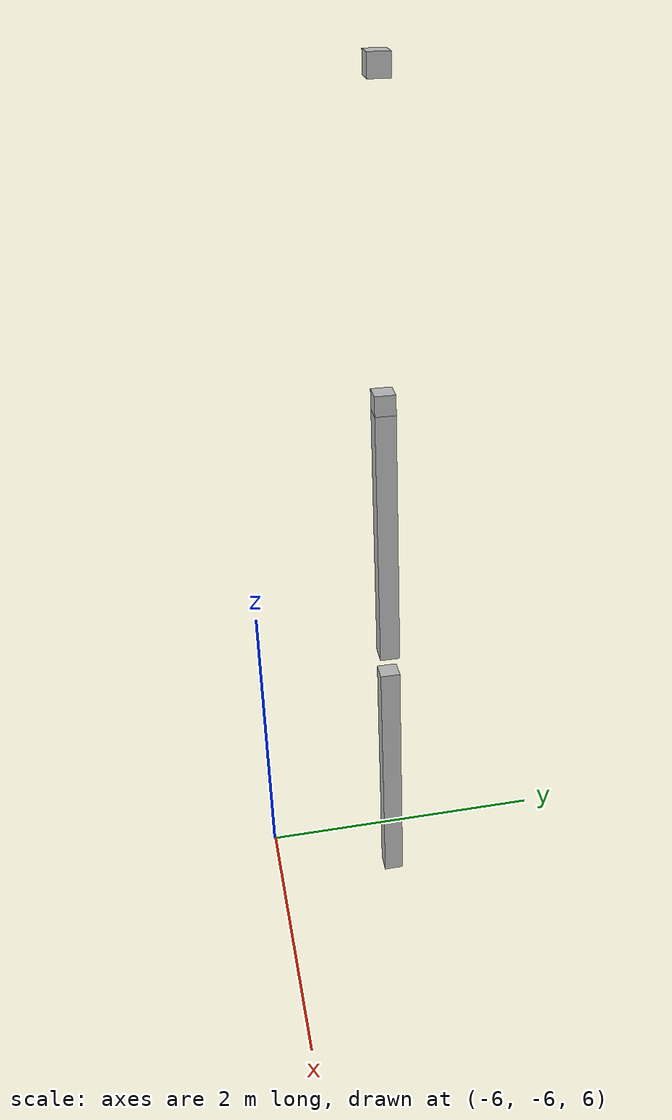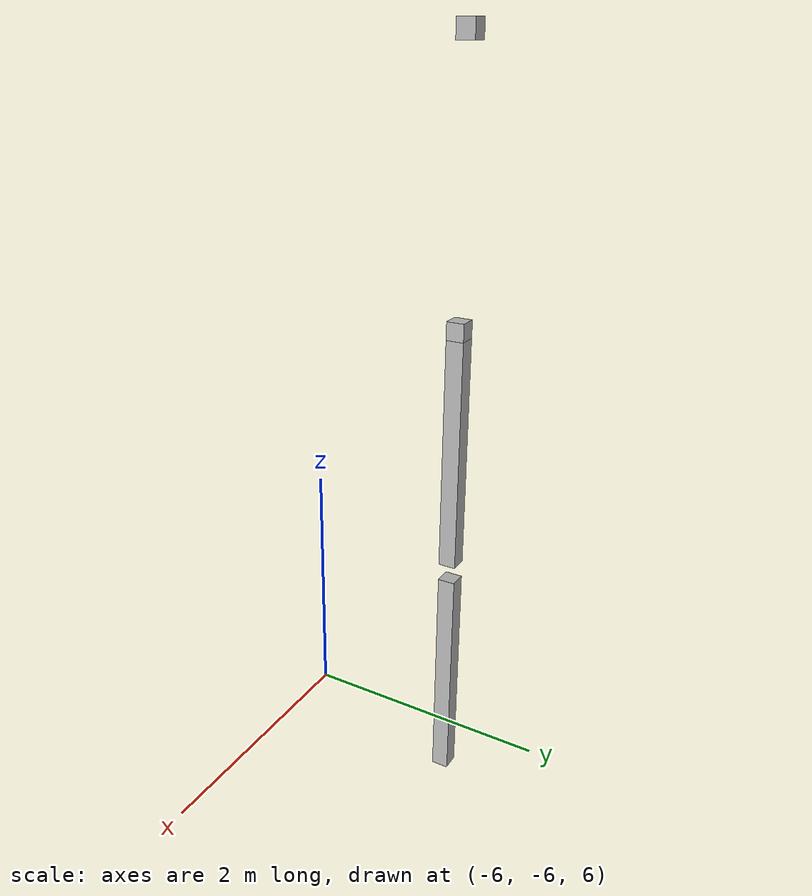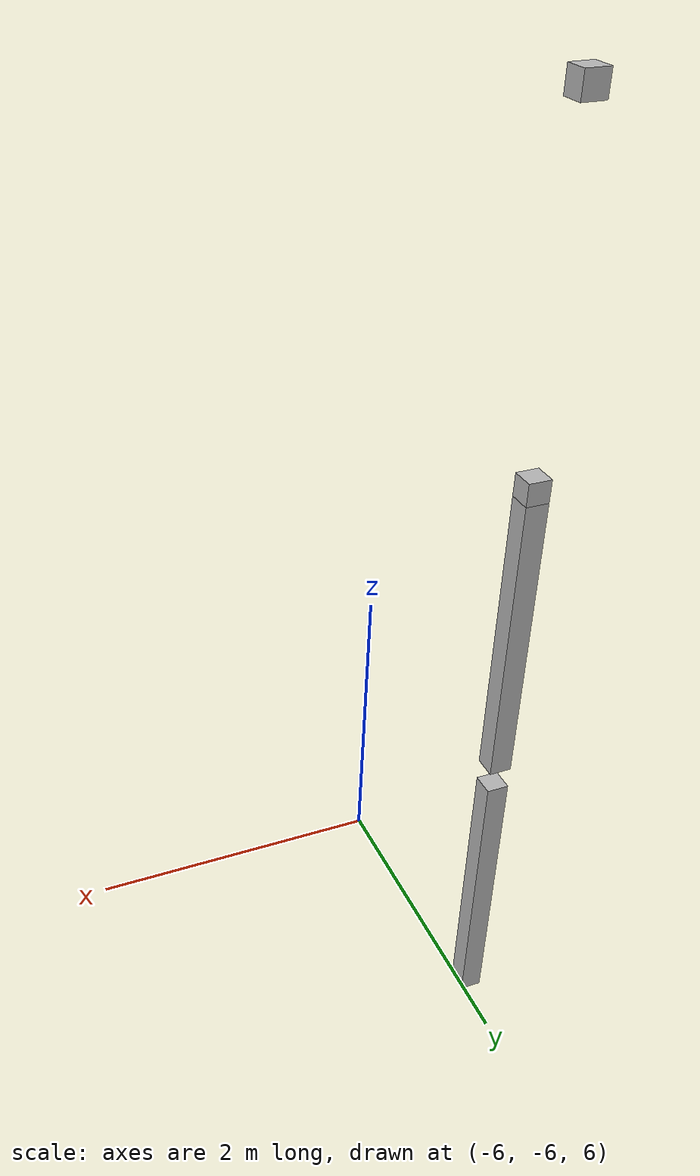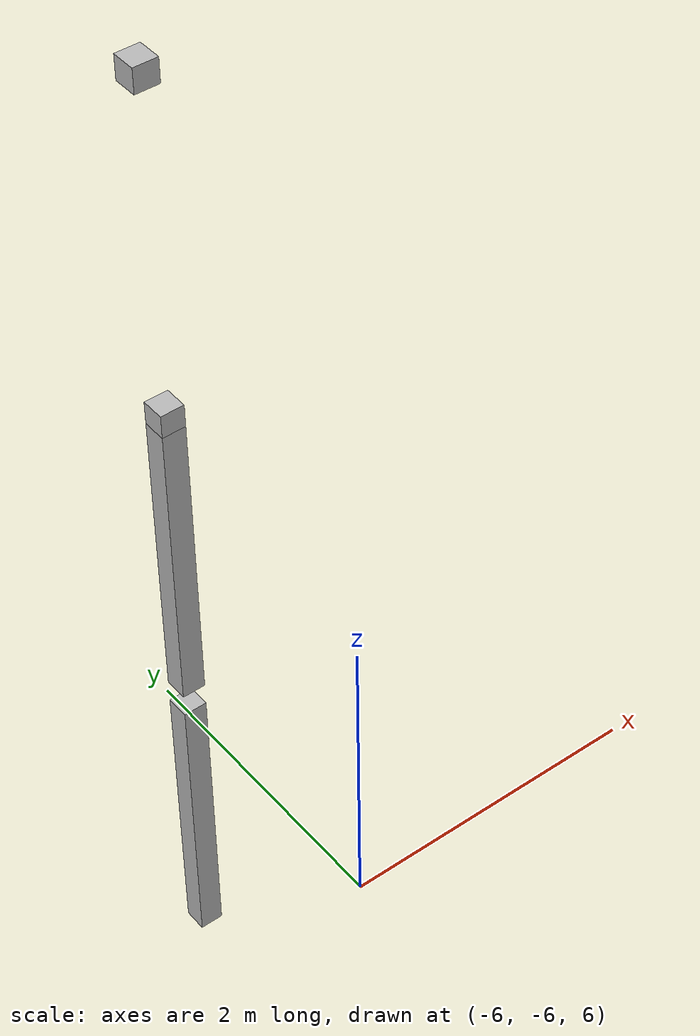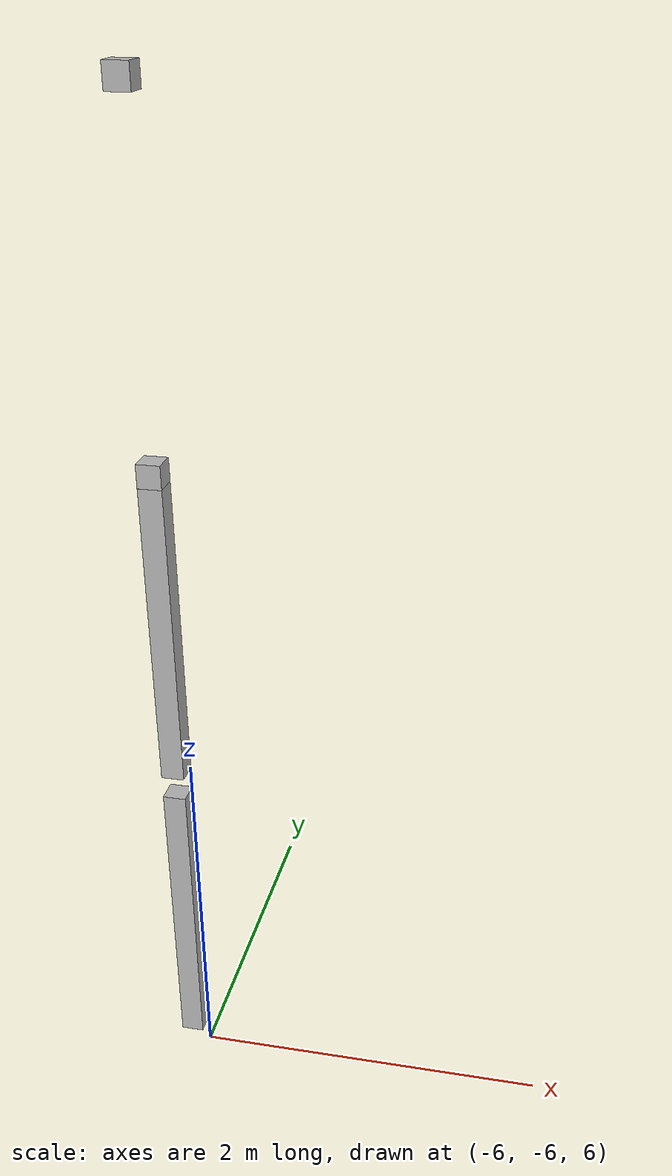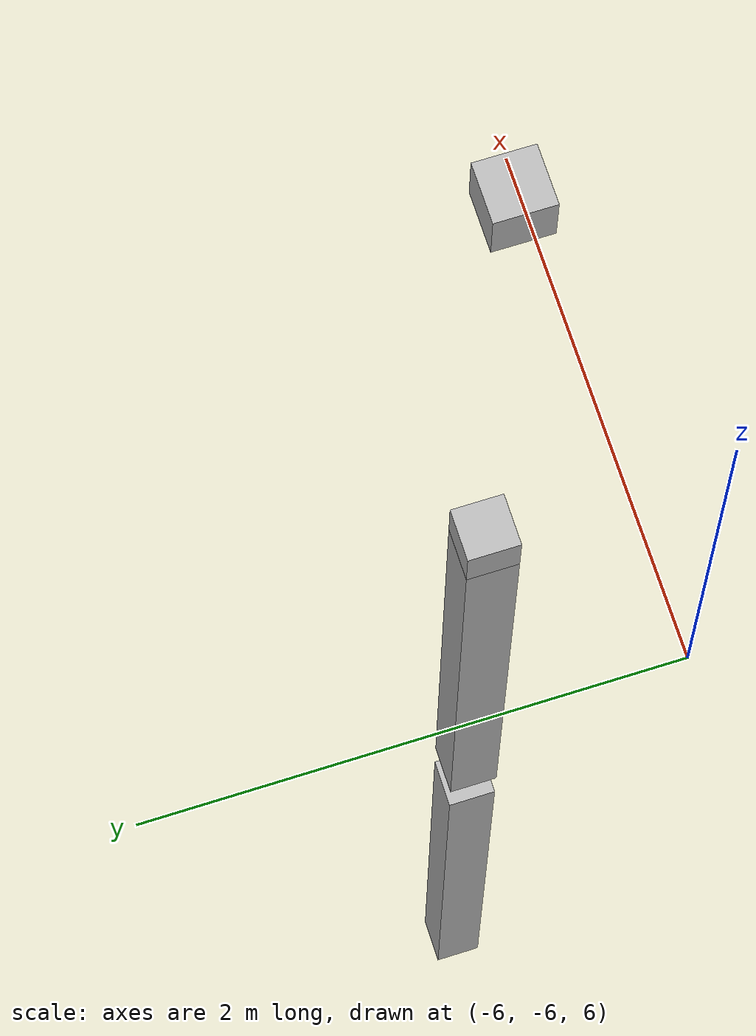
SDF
<sdf version="1.7">
 <world name="default">
  <model name="orthogonal_747_2.000.15_TS">
   <static>1</static>
   <link name="z_link_4_0_0">
    <inertial>
     <mass>1</mass>
     <inertia>
      <ixx>0.166667</ixx>
      <ixy>0</ixy>
      <ixz>0</ixz>
      <iyy>0.166667</iyy>
      <iyz>0</iyz>
      <izz>0.166667</izz>
     </inertia>
    </inertial>
    <pose>0 0 8.6 0 -0 0</pose>
    <visual name="visual_0">
     <laser_retro>3480</laser_retro>
     <geometry><box><size>0.15 1e-06 2</size></box></geometry>
     <material>
      <script><name>Gazebo/Grey</name><uri>file://media/materials/scripts/gazebo.material</uri></script>
      <shader type="pixel"><normal_map>__default__</normal_map></shader>
      <ambient>0.678 0.498 0.659 1</ambient>
      <diffuse>0.7 0.7 0.7 1</diffuse>
      <specular>0.01 0.01 0.01 1</specular>
      <emissive>0 0 0 1</emissive>
     </material>
     <pose>0 -0.075 0 0 -0 0</pose>
     <transparency>1</transparency>
    </visual>
    <visual name="visual_1">
     <laser_retro>3481</laser_retro>
     <geometry><box><size>0.15 1e-06 2</size></box></geometry>
     <material>
      <script><name>Gazebo/Grey</name><uri>file://media/materials/scripts/gazebo.material</uri></script>
      <shader type="pixel"><normal_map>__default__</normal_map></shader>
      <ambient>0.447 0.624 0.812 1</ambient>
      <diffuse>0.7 0.7 0.7 1</diffuse>
      <specular>0.01 0.01 0.01 1</specular>
      <emissive>0 0 0 1</emissive>
     </material>
     <pose>0 0.075 0 0 -0 0</pose>
     <transparency>1</transparency>
    </visual>
    <visual name="visual_2">
     <laser_retro>3482</laser_retro>
     <geometry><box><size>0.15 0.15 1e-06</size></box></geometry>
     <material>
      <script><name>Gazebo/Grey</name><uri>file://media/materials/scripts/gazebo.material</uri></script>
      <shader type="pixel"><normal_map>__default__</normal_map></shader>
      <ambient>0.988 0.686 0.243 1</ambient>
      <diffuse>0.7 0.7 0.7 1</diffuse>
      <specular>0.01 0.01 0.01 1</specular>
      <emissive>0 0 0 1</emissive>
     </material>
     <pose>0 0 -1 0 -0 0</pose>
     <transparency>1</transparency>
    </visual>
    <visual name="visual_3">
     <laser_retro>3483</laser_retro>
     <geometry><box><size>1e-06 0.15 2</size></box></geometry>
     <material>
      <script><name>Gazebo/Grey</name><uri>file://media/materials/scripts/gazebo.material</uri></script>
      <shader type="pixel"><normal_map>__default__</normal_map></shader>
      <ambient>0.988 0.914 0.31 1</ambient>
      <diffuse>0.7 0.7 0.7 1</diffuse>
      <specular>0.01 0.01 0.01 1</specular>
      <emissive>0 0 0 1</emissive>
     </material>
     <pose>0.075 0 0 0 -0 0</pose>
     <transparency>1</transparency>
    </visual>
    <visual name="visual_4">
     <laser_retro>3484</laser_retro>
     <geometry><box><size>0.15 0.15 1e-06</size></box></geometry>
     <material>
      <script><name>Gazebo/Grey</name><uri>file://media/materials/scripts/gazebo.material</uri></script>
      <shader type="pixel"><normal_map>__default__</normal_map></shader>
      <ambient>0.937 0.161 0.161 1</ambient>
      <diffuse>0.7 0.7 0.7 1</diffuse>
      <specular>0.01 0.01 0.01 1</specular>
      <emissive>0 0 0 1</emissive>
     </material>
     <pose>0 0 1 0 -0 0</pose>
     <transparency>1</transparency>
    </visual>
    <visual name="visual_5">
     <laser_retro>3485</laser_retro>
     <geometry><box><size>1e-06 0.15 2</size></box></geometry>
     <material>
      <script><name>Gazebo/Grey</name><uri>file://media/materials/scripts/gazebo.material</uri></script>
      <shader type="pixel"><normal_map>__default__</normal_map></shader>
      <ambient>0.541 0.886 0.204 1</ambient>
      <diffuse>0.7 0.7 0.7 1</diffuse>
      <specular>0.01 0.01 0.01 1</specular>
      <emissive>0 0 0 1</emissive>
     </material>
     <pose>-0.075 0 0 0 -0 0</pose>
     <transparency>1</transparency>
    </visual>
    <visual name="visual_texture">
     <geometry><box><size>0.149985 0.149985 1.9998</size></box></geometry>
     <material>
      <script>
       <uri>model://BASE_MODELS/simple_block_v2_textured/materials/scripts</uri>
       <uri>model://BASE_MODELS/simple_block_v2_textured/materials/textures</uri>
       <name>metal</name>
      </script>
     </material>
     <laser_retro>3486</laser_retro>
    </visual>
    <collision name="collision">
     <geometry><box><size>0.15 0.15 2</size></box></geometry>
     <surface>
      <friction>
       <ode><mu>1</mu><mu2>1</mu2><fdir1>0 0 0</fdir1><slip1>0</slip1><slip2>0</slip2></ode>
       <torsional>
        <coefficient>1</coefficient>
        <patch_radius>0</patch_radius>
        <surface_radius>0</surface_radius>
        <use_patch_radius>1</use_patch_radius>
        <ode><slip>0</slip></ode>
       </torsional>
      </friction>
      <bounce><restitution_coefficient>0</restitution_coefficient><threshold>1e+06</threshold></bounce>
      <contact>
       <collide_without_contact>0</collide_without_contact>
       <collide_without_contact_bitmask>1</collide_without_contact_bitmask>
       <collide_bitmask>1</collide_bitmask>
       <ode>
        <soft_cfm>0</soft_cfm>
        <soft_erp>0.2</soft_erp>
        <kp>1e+13</kp>
        <kd>1</kd>
        <max_vel>0.01</max_vel>
        <min_depth>0</min_depth>
       </ode>
       <bullet>
        <split_impulse>1</split_impulse>
        <split_impulse_penetration_threshold>-0.01</split_impulse_penetration_threshold>
        <soft_cfm>0</soft_cfm>
        <soft_erp>0.2</soft_erp>
        <kp>1e+13</kp>
        <kd>1</kd>
       </bullet>
      </contact>
     </surface>
    </collision>
   </link>
   <link name="u_link_5_0_0">
    <inertial>
     <mass>1</mass>
     <inertia>
      <ixx>0.166667</ixx>
      <ixy>0</ixy>
      <ixz>0</ixz>
      <iyy>0.166667</iyy>
      <iyz>0</iyz>
      <izz>0.166667</izz>
     </inertia>
    </inertial>
    <pose>0 0 11.825 0 -0 0</pose>
    <visual name="visual_0">
     <laser_retro>4376</laser_retro>
     <geometry><box><size>0.15 1e-06 0.15</size></box></geometry>
     <material>
      <script><name>Gazebo/Grey</name><uri>file://media/materials/scripts/gazebo.material</uri></script>
      <shader type="pixel"><normal_map>__default__</normal_map></shader>
      <ambient>0.678 0.498 0.659 1</ambient>
      <diffuse>0.7 0.7 0.7 1</diffuse>
      <specular>0.01 0.01 0.01 1</specular>
      <emissive>0 0 0 1</emissive>
     </material>
     <pose>0 -0.075 0 0 -0 0</pose>
     <transparency>1</transparency>
    </visual>
    <visual name="visual_1">
     <laser_retro>4377</laser_retro>
     <geometry><box><size>0.15 1e-06 0.15</size></box></geometry>
     <material>
      <script><name>Gazebo/Grey</name><uri>file://media/materials/scripts/gazebo.material</uri></script>
      <shader type="pixel"><normal_map>__default__</normal_map></shader>
      <ambient>0.447 0.624 0.812 1</ambient>
      <diffuse>0.7 0.7 0.7 1</diffuse>
      <specular>0.01 0.01 0.01 1</specular>
      <emissive>0 0 0 1</emissive>
     </material>
     <pose>0 0.075 0 0 -0 0</pose>
     <transparency>1</transparency>
    </visual>
    <visual name="visual_2">
     <laser_retro>4378</laser_retro>
     <geometry><box><size>0.15 0.15 1e-06</size></box></geometry>
     <material>
      <script><name>Gazebo/Grey</name><uri>file://media/materials/scripts/gazebo.material</uri></script>
      <shader type="pixel"><normal_map>__default__</normal_map></shader>
      <ambient>0.988 0.686 0.243 1</ambient>
      <diffuse>0.7 0.7 0.7 1</diffuse>
      <specular>0.01 0.01 0.01 1</specular>
      <emissive>0 0 0 1</emissive>
     </material>
     <pose>0 0 -0.075 0 -0 0</pose>
     <transparency>1</transparency>
    </visual>
    <visual name="visual_3">
     <laser_retro>4379</laser_retro>
     <geometry><box><size>1e-06 0.15 0.15</size></box></geometry>
     <material>
      <script><name>Gazebo/Grey</name><uri>file://media/materials/scripts/gazebo.material</uri></script>
      <shader type="pixel"><normal_map>__default__</normal_map></shader>
      <ambient>0.988 0.914 0.31 1</ambient>
      <diffuse>0.7 0.7 0.7 1</diffuse>
      <specular>0.01 0.01 0.01 1</specular>
      <emissive>0 0 0 1</emissive>
     </material>
     <pose>0.075 0 0 0 -0 0</pose>
     <transparency>1</transparency>
    </visual>
    <visual name="visual_4">
     <laser_retro>4380</laser_retro>
     <geometry><box><size>0.15 0.15 1e-06</size></box></geometry>
     <material>
      <script><name>Gazebo/Grey</name><uri>file://media/materials/scripts/gazebo.material</uri></script>
      <shader type="pixel"><normal_map>__default__</normal_map></shader>
      <ambient>0.937 0.161 0.161 1</ambient>
      <diffuse>0.7 0.7 0.7 1</diffuse>
      <specular>0.01 0.01 0.01 1</specular>
      <emissive>0 0 0 1</emissive>
     </material>
     <pose>0 0 0.075 0 -0 0</pose>
     <transparency>1</transparency>
    </visual>
    <visual name="visual_5">
     <laser_retro>4381</laser_retro>
     <geometry><box><size>1e-06 0.15 0.15</size></box></geometry>
     <material>
      <script><name>Gazebo/Grey</name><uri>file://media/materials/scripts/gazebo.material</uri></script>
      <shader type="pixel"><normal_map>__default__</normal_map></shader>
      <ambient>0.541 0.886 0.204 1</ambient>
      <diffuse>0.7 0.7 0.7 1</diffuse>
      <specular>0.01 0.01 0.01 1</specular>
      <emissive>0 0 0 1</emissive>
     </material>
     <pose>-0.075 0 0 0 -0 0</pose>
     <transparency>1</transparency>
    </visual>
    <visual name="visual_texture">
     <geometry><box><size>0.149985 0.149985 0.149985</size></box></geometry>
     <material>
      <script>
       <uri>model://BASE_MODELS/simple_block_v2_textured/materials/scripts</uri>
       <uri>model://BASE_MODELS/simple_block_v2_textured/materials/textures</uri>
       <name>metal</name>
      </script>
     </material>
     <laser_retro>4382</laser_retro>
    </visual>
    <collision name="collision">
     <geometry><box><size>0.15 0.15 0.15</size></box></geometry>
     <surface>
      <friction>
       <ode><mu>1</mu><mu2>1</mu2><fdir1>0 0 0</fdir1><slip1>0</slip1><slip2>0</slip2></ode>
       <torsional>
        <coefficient>1</coefficient>
        <patch_radius>0</patch_radius>
        <surface_radius>0</surface_radius>
        <use_patch_radius>1</use_patch_radius>
        <ode><slip>0</slip></ode>
       </torsional>
      </friction>
      <bounce><restitution_coefficient>0</restitution_coefficient><threshold>1e+06</threshold></bounce>
      <contact>
       <collide_without_contact>0</collide_without_contact>
       <collide_without_contact_bitmask>1</collide_without_contact_bitmask>
       <collide_bitmask>1</collide_bitmask>
       <ode>
        <soft_cfm>0</soft_cfm>
        <soft_erp>0.2</soft_erp>
        <kp>1e+13</kp>
        <kd>1</kd>
        <max_vel>0.01</max_vel>
        <min_depth>0</min_depth>
       </ode>
       <bullet>
        <split_impulse>1</split_impulse>
        <split_impulse_penetration_threshold>-0.01</split_impulse_penetration_threshold>
        <soft_cfm>0</soft_cfm>
        <soft_erp>0.2</soft_erp>
        <kp>1e+13</kp>
        <kd>1</kd>
       </bullet>
      </contact>
     </surface>
    </collision>
   </link>
   <link name="z_link_5_0_0">
    <inertial>
     <mass>1</mass>
     <inertia>
      <ixx>0.166667</ixx>
      <ixy>0</ixy>
      <ixz>0</ixz>
      <iyy>0.166667</iyy>
      <iyz>0</iyz>
      <izz>0.166667</izz>
     </inertia>
    </inertial>
    <pose>0 0 10.75 0 -0 0</pose>
    <visual name="visual_0">
     <laser_retro>4383</laser_retro>
     <geometry><box><size>0.15 1e-06 2</size></box></geometry>
     <material>
      <script><name>Gazebo/Grey</name><uri>file://media/materials/scripts/gazebo.material</uri></script>
      <shader type="pixel"><normal_map>__default__</normal_map></shader>
      <ambient>0.678 0.498 0.659 1</ambient>
      <diffuse>0.7 0.7 0.7 1</diffuse>
      <specular>0.01 0.01 0.01 1</specular>
      <emissive>0 0 0 1</emissive>
     </material>
     <pose>0 -0.075 0 0 -0 0</pose>
     <transparency>1</transparency>
    </visual>
    <visual name="visual_1">
     <laser_retro>4384</laser_retro>
     <geometry><box><size>0.15 1e-06 2</size></box></geometry>
     <material>
      <script><name>Gazebo/Grey</name><uri>file://media/materials/scripts/gazebo.material</uri></script>
      <shader type="pixel"><normal_map>__default__</normal_map></shader>
      <ambient>0.447 0.624 0.812 1</ambient>
      <diffuse>0.7 0.7 0.7 1</diffuse>
      <specular>0.01 0.01 0.01 1</specular>
      <emissive>0 0 0 1</emissive>
     </material>
     <pose>0 0.075 0 0 -0 0</pose>
     <transparency>1</transparency>
    </visual>
    <visual name="visual_2">
     <laser_retro>4385</laser_retro>
     <geometry><box><size>0.15 0.15 1e-06</size></box></geometry>
     <material>
      <script><name>Gazebo/Grey</name><uri>file://media/materials/scripts/gazebo.material</uri></script>
      <shader type="pixel"><normal_map>__default__</normal_map></shader>
      <ambient>0.988 0.686 0.243 1</ambient>
      <diffuse>0.7 0.7 0.7 1</diffuse>
      <specular>0.01 0.01 0.01 1</specular>
      <emissive>0 0 0 1</emissive>
     </material>
     <pose>0 0 -1 0 -0 0</pose>
     <transparency>1</transparency>
    </visual>
    <visual name="visual_3">
     <laser_retro>4386</laser_retro>
     <geometry><box><size>1e-06 0.15 2</size></box></geometry>
     <material>
      <script><name>Gazebo/Grey</name><uri>file://media/materials/scripts/gazebo.material</uri></script>
      <shader type="pixel"><normal_map>__default__</normal_map></shader>
      <ambient>0.988 0.914 0.31 1</ambient>
      <diffuse>0.7 0.7 0.7 1</diffuse>
      <specular>0.01 0.01 0.01 1</specular>
      <emissive>0 0 0 1</emissive>
     </material>
     <pose>0.075 0 0 0 -0 0</pose>
     <transparency>1</transparency>
    </visual>
    <visual name="visual_4">
     <laser_retro>4387</laser_retro>
     <geometry><box><size>0.15 0.15 1e-06</size></box></geometry>
     <material>
      <script><name>Gazebo/Grey</name><uri>file://media/materials/scripts/gazebo.material</uri></script>
      <shader type="pixel"><normal_map>__default__</normal_map></shader>
      <ambient>0.937 0.161 0.161 1</ambient>
      <diffuse>0.7 0.7 0.7 1</diffuse>
      <specular>0.01 0.01 0.01 1</specular>
      <emissive>0 0 0 1</emissive>
     </material>
     <pose>0 0 1 0 -0 0</pose>
     <transparency>1</transparency>
    </visual>
    <visual name="visual_5">
     <laser_retro>4388</laser_retro>
     <geometry><box><size>1e-06 0.15 2</size></box></geometry>
     <material>
      <script><name>Gazebo/Grey</name><uri>file://media/materials/scripts/gazebo.material</uri></script>
      <shader type="pixel"><normal_map>__default__</normal_map></shader>
      <ambient>0.541 0.886 0.204 1</ambient>
      <diffuse>0.7 0.7 0.7 1</diffuse>
      <specular>0.01 0.01 0.01 1</specular>
      <emissive>0 0 0 1</emissive>
     </material>
     <pose>-0.075 0 0 0 -0 0</pose>
     <transparency>1</transparency>
    </visual>
    <visual name="visual_texture">
     <geometry><box><size>0.149985 0.149985 1.9998</size></box></geometry>
     <material>
      <script>
       <uri>model://BASE_MODELS/simple_block_v2_textured/materials/scripts</uri>
       <uri>model://BASE_MODELS/simple_block_v2_textured/materials/textures</uri>
       <name>metal</name>
      </script>
     </material>
     <laser_retro>4389</laser_retro>
    </visual>
    <collision name="collision">
     <geometry><box><size>0.15 0.15 2</size></box></geometry>
     <surface>
      <friction>
       <ode><mu>1</mu><mu2>1</mu2><fdir1>0 0 0</fdir1><slip1>0</slip1><slip2>0</slip2></ode>
       <torsional>
        <coefficient>1</coefficient>
        <patch_radius>0</patch_radius>
        <surface_radius>0</surface_radius>
        <use_patch_radius>1</use_patch_radius>
        <ode><slip>0</slip></ode>
       </torsional>
      </friction>
      <bounce><restitution_coefficient>0</restitution_coefficient><threshold>1e+06</threshold></bounce>
      <contact>
       <collide_without_contact>0</collide_without_contact>
       <collide_without_contact_bitmask>1</collide_without_contact_bitmask>
       <collide_bitmask>1</collide_bitmask>
       <ode>
        <soft_cfm>0</soft_cfm>
        <soft_erp>0.2</soft_erp>
        <kp>1e+13</kp>
        <kd>1</kd>
        <max_vel>0.01</max_vel>
        <min_depth>0</min_depth>
       </ode>
       <bullet>
        <split_impulse>1</split_impulse>
        <split_impulse_penetration_threshold>-0.01</split_impulse_penetration_threshold>
        <soft_cfm>0</soft_cfm>
        <soft_erp>0.2</soft_erp>
        <kp>1e+13</kp>
        <kd>1</kd>
       </bullet>
      </contact>
     </surface>
    </collision>
   </link>
   <link name="u_link_6_0_0">
    <inertial>
     <mass>1</mass>
     <inertia>
      <ixx>0.166667</ixx>
      <ixy>0</ixy>
      <ixz>0</ixz>
      <iyy>0.166667</iyy>
      <iyz>0</iyz>
      <izz>0.166667</izz>
     </inertia>
    </inertial>
    <pose>0 0 13.975 0 -0 0</pose>
    <visual name="visual_0">
     <laser_retro>5279</laser_retro>
     <geometry><box><size>0.15 1e-06 0.15</size></box></geometry>
     <material>
      <script><name>Gazebo/Grey</name><uri>file://media/materials/scripts/gazebo.material</uri></script>
      <shader type="pixel"><normal_map>__default__</normal_map></shader>
      <ambient>0.678 0.498 0.659 1</ambient>
      <diffuse>0.7 0.7 0.7 1</diffuse>
      <specular>0.01 0.01 0.01 1</specular>
      <emissive>0 0 0 1</emissive>
     </material>
     <pose>0 -0.075 0 0 -0 0</pose>
     <transparency>1</transparency>
    </visual>
    <visual name="visual_1">
     <laser_retro>5280</laser_retro>
     <geometry><box><size>0.15 1e-06 0.15</size></box></geometry>
     <material>
      <script><name>Gazebo/Grey</name><uri>file://media/materials/scripts/gazebo.material</uri></script>
      <shader type="pixel"><normal_map>__default__</normal_map></shader>
      <ambient>0.447 0.624 0.812 1</ambient>
      <diffuse>0.7 0.7 0.7 1</diffuse>
      <specular>0.01 0.01 0.01 1</specular>
      <emissive>0 0 0 1</emissive>
     </material>
     <pose>0 0.075 0 0 -0 0</pose>
     <transparency>1</transparency>
    </visual>
    <visual name="visual_2">
     <laser_retro>5281</laser_retro>
     <geometry><box><size>0.15 0.15 1e-06</size></box></geometry>
     <material>
      <script><name>Gazebo/Grey</name><uri>file://media/materials/scripts/gazebo.material</uri></script>
      <shader type="pixel"><normal_map>__default__</normal_map></shader>
      <ambient>0.988 0.686 0.243 1</ambient>
      <diffuse>0.7 0.7 0.7 1</diffuse>
      <specular>0.01 0.01 0.01 1</specular>
      <emissive>0 0 0 1</emissive>
     </material>
     <pose>0 0 -0.075 0 -0 0</pose>
     <transparency>1</transparency>
    </visual>
    <visual name="visual_3">
     <laser_retro>5282</laser_retro>
     <geometry><box><size>1e-06 0.15 0.15</size></box></geometry>
     <material>
      <script><name>Gazebo/Grey</name><uri>file://media/materials/scripts/gazebo.material</uri></script>
      <shader type="pixel"><normal_map>__default__</normal_map></shader>
      <ambient>0.988 0.914 0.31 1</ambient>
      <diffuse>0.7 0.7 0.7 1</diffuse>
      <specular>0.01 0.01 0.01 1</specular>
      <emissive>0 0 0 1</emissive>
     </material>
     <pose>0.075 0 0 0 -0 0</pose>
     <transparency>1</transparency>
    </visual>
    <visual name="visual_4">
     <laser_retro>5283</laser_retro>
     <geometry><box><size>0.15 0.15 1e-06</size></box></geometry>
     <material>
      <script><name>Gazebo/Grey</name><uri>file://media/materials/scripts/gazebo.material</uri></script>
      <shader type="pixel"><normal_map>__default__</normal_map></shader>
      <ambient>0.937 0.161 0.161 1</ambient>
      <diffuse>0.7 0.7 0.7 1</diffuse>
      <specular>0.01 0.01 0.01 1</specular>
      <emissive>0 0 0 1</emissive>
     </material>
     <pose>0 0 0.075 0 -0 0</pose>
     <transparency>1</transparency>
    </visual>
    <visual name="visual_5">
     <laser_retro>5284</laser_retro>
     <geometry><box><size>1e-06 0.15 0.15</size></box></geometry>
     <material>
      <script><name>Gazebo/Grey</name><uri>file://media/materials/scripts/gazebo.material</uri></script>
      <shader type="pixel"><normal_map>__default__</normal_map></shader>
      <ambient>0.541 0.886 0.204 1</ambient>
      <diffuse>0.7 0.7 0.7 1</diffuse>
      <specular>0.01 0.01 0.01 1</specular>
      <emissive>0 0 0 1</emissive>
     </material>
     <pose>-0.075 0 0 0 -0 0</pose>
     <transparency>1</transparency>
    </visual>
    <visual name="visual_texture">
     <geometry><box><size>0.149985 0.149985 0.149985</size></box></geometry>
     <material>
      <script>
       <uri>model://BASE_MODELS/simple_block_v2_textured/materials/scripts</uri>
       <uri>model://BASE_MODELS/simple_block_v2_textured/materials/textures</uri>
       <name>metal</name>
      </script>
     </material>
     <laser_retro>5285</laser_retro>
    </visual>
    <collision name="collision">
     <geometry><box><size>0.15 0.15 0.15</size></box></geometry>
     <surface>
      <friction>
       <ode><mu>1</mu><mu2>1</mu2><fdir1>0 0 0</fdir1><slip1>0</slip1><slip2>0</slip2></ode>
       <torsional>
        <coefficient>1</coefficient>
        <patch_radius>0</patch_radius>
        <surface_radius>0</surface_radius>
        <use_patch_radius>1</use_patch_radius>
        <ode><slip>0</slip></ode>
       </torsional>
      </friction>
      <bounce><restitution_coefficient>0</restitution_coefficient><threshold>1e+06</threshold></bounce>
      <contact>
       <collide_without_contact>0</collide_without_contact>
       <collide_without_contact_bitmask>1</collide_without_contact_bitmask>
       <collide_bitmask>1</collide_bitmask>
       <ode>
        <soft_cfm>0</soft_cfm>
        <soft_erp>0.2</soft_erp>
        <kp>1e+13</kp>
        <kd>1</kd>
        <max_vel>0.01</max_vel>
        <min_depth>0</min_depth>
       </ode>
       <bullet>
        <split_impulse>1</split_impulse>
        <split_impulse_penetration_threshold>-0.01</split_impulse_penetration_threshold>
        <soft_cfm>0</soft_cfm>
        <soft_erp>0.2</soft_erp>
        <kp>1e+13</kp>
        <kd>1</kd>
       </bullet>
      </contact>
     </surface>
    </collision>
   </link>
   <pose>-6.47624 -5 -2.5 0 -0 0</pose>
  </model>
 </world>
</sdf>
